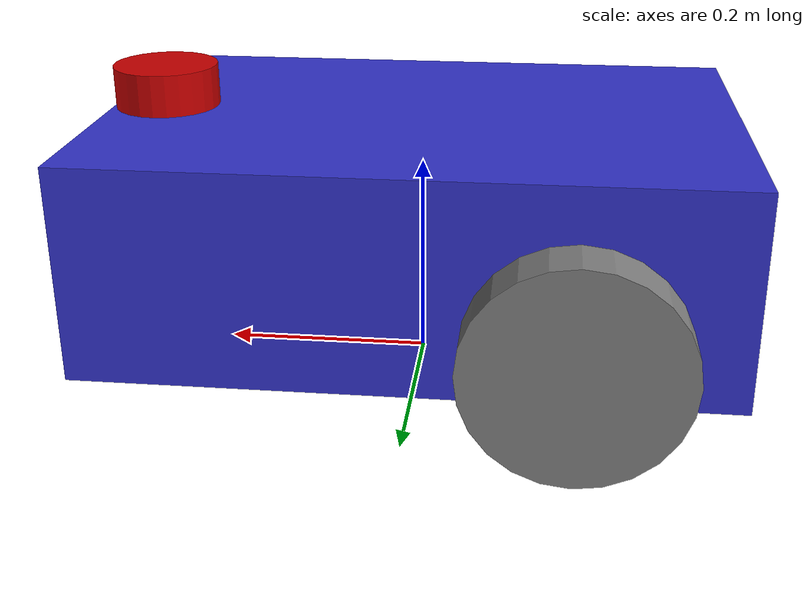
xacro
<?xml version="1.0"?>
<robot name="medibot" xmlns:xacro="http://www.ros.org/wiki/xacro">

  <!-- Define robot constants -->
  <xacro:property name="base_width" value="0.4"/>
  <xacro:property name="base_length" value="0.6"/>
  <xacro:property name="base_height" value="0.2"/>

  <xacro:property name="wheel_radius" value="0.1"/>
  <xacro:property name="wheel_width" value="0.05"/>
  <xacro:property name="wheel_ygap" value="0.025"/>
  <xacro:property name="wheel_zoff" value="0.05"/>
  <xacro:property name="wheel_xoff" value="0.15"/>

  <xacro:property name="caster_xoff" value="0.2"/>

  <!-- Define intertial property macros  -->
  <xacro:macro name="box_inertia" params="m w h d">
    <inertial>
      <origin xyz="0 0 0" rpy="${pi/2} 0 ${pi/2}"/>
      <mass value="${m}"/>
      <inertia ixx="${(m/12) * (h*h + d*d)}" ixy="0.0" ixz="0.0" iyy="${(m/12) * (w*w + d*d)}" iyz="0.0" izz="${(m/12) * (w*w + h*h)}"/>
    </inertial>
  </xacro:macro>

  <xacro:macro name="cylinder_inertia" params="m r h">
    <inertial>
      <origin xyz="0 0 0" rpy="${pi/2} 0 0" />
      <mass value="${m}"/>
      <inertia ixx="${(m/12) * (3*r*r + h*h)}" ixy = "0" ixz = "0" iyy="${(m/12) * (3*r*r + h*h)}" iyz = "0" izz="${(m/2) * (r*r)}"/>
    </inertial>
  </xacro:macro>

  <xacro:macro name="sphere_inertia" params="m r">
    <inertial>
      <mass value="${m}"/>
      <inertia ixx="${(2/5) * m * (r*r)}" ixy="0.0" ixz="0.0" iyy="${(2/5) * m * (r*r)}" iyz="0.0" izz="${(2/5) * m * (r*r)}"/>
    </inertial>
  </xacro:macro>

  <!-- Robot Footprint -->
  <link name="base_footprint"/>

  <!-- Robot Base -->
  <link name="base_link">
    <visual>
      <geometry>
        <box size="${base_length} ${base_width} ${base_height}"/>
      </geometry>
      <material name="blue">
        <color rgba="0.2 0.2 0.8 1"/>
      </material>
    </visual>

    <collision>
      <geometry>
        <box size="${base_length} ${base_width} ${base_height}"/>
      </geometry>
    </collision>

    <xacro:box_inertia m="15" w="${base_width}" d="${base_length}" h="${base_height}"/>
  </link>

  <joint name="base_joint" type="fixed">
    <parent link="base_footprint"/>
    <child link="base_link"/>
    <origin xyz="0.0 0.0 ${(wheel_radius+wheel_zoff)}" rpy="0 0 0"/>
  </joint>

  <!-- Wheels -->
  <xacro:macro name="wheel" params="prefix x_reflect y_reflect">
    <link name="${prefix}_link">
      <visual>
        <origin xyz="0 0 0" rpy="${pi/2} 0 0"/>
        <geometry>
          <cylinder radius="${wheel_radius}" length="${wheel_width}"/>
        </geometry>
        <material name="gray">
          <color rgba="0.5 0.5 0.5 1"/>
        </material>
      </visual>

      <collision>
        <origin xyz="0 0 0" rpy="${pi/2} 0 0"/>
        <geometry>
          <cylinder radius="${wheel_radius}" length="${wheel_width}"/>
        </geometry>
      </collision>

      <xacro:cylinder_inertia m="1" r="${wheel_radius}" h="${wheel_width}"/>
    </link>

    <joint name="${prefix}_joint" type="continuous">
      <parent link="base_link"/>
      <child link="${prefix}_link"/>
      <origin xyz="${x_reflect*wheel_xoff} ${y_reflect*(base_width/2+wheel_ygap)} ${-wheel_zoff}" rpy="0 0 0"/>
      <axis xyz="0 1 0"/>
    </joint>
  </xacro:macro>

  <xacro:wheel prefix="left_wheel" x_reflect="-1" y_reflect="1" />
  <xacro:wheel prefix="right_wheel" x_reflect="-1" y_reflect="-1" />

  <!-- Caster Wheel -->
  <link name="front_caster">
    <visual>
      <geometry>
        <sphere radius="${(wheel_radius+wheel_zoff-(base_height/2))}"/>
      </geometry>
      <material name="gray">
        <color rgba="0.5 0.5 0.5 1"/>
      </material>
    </visual>

    <collision>
      <origin xyz="0 0 0" rpy="0 0 0"/>
      <geometry>
        <sphere radius="${(wheel_radius+wheel_zoff-(base_height/2))}"/>
      </geometry>
    </collision>

    <xacro:sphere_inertia m="0.5" r="${(wheel_radius+wheel_zoff-(base_height/2))}"/>
  </link>

  <joint name="caster_joint" type="fixed">
    <parent link="base_link"/>
    <child link="front_caster"/>
    <origin xyz="${caster_xoff} 0.0 ${-(base_height/2)}" rpy="0 0 0"/>
  </joint>

  <!-- Laser Scanner -->
  <link name="laser_frame">
    <visual>
      <origin xyz="0 0 0" rpy="0 0 0"/>
      <geometry>
        <cylinder radius="0.05" length="0.04"/>
      </geometry>
      <material name="red">
        <color rgba="0.8 0.0 0.0 1"/>
      </material>
    </visual>

    <collision>
      <origin xyz="0 0 0" rpy="0 0 0"/>
      <geometry>
        <cylinder radius="0.05" length="0.04"/>
      </geometry>
    </collision>

    <xacro:cylinder_inertia m="0.1" r="0.05" h="0.04"/>
  </link>

  <joint name="laser_joint" type="fixed">
    <parent link="base_link"/>
    <child link="laser_frame"/>
    <origin xyz="${base_length/2 - 0.05} 0 ${base_height/2 + 0.02}" rpy="0 0 0"/>
  </joint>

  <!-- Gazebo plugins -->
  <gazebo>
    <plugin name="diff_drive" filename="libgazebo_ros_diff_drive.so">

      <!-- Update rate in Hz -->
      <update_rate>50</update_rate>

      <!-- wheels -->
      <left_joint>left_wheel_joint</left_joint>
      <right_joint>right_wheel_joint</right_joint>

      <!-- kinematics -->
      <wheel_separation>${base_width + 2*wheel_ygap}</wheel_separation>
      <wheel_diameter>${2*wheel_radius}</wheel_diameter>

      <!-- limits -->
      <max_wheel_torque>20</max_wheel_torque>
      <max_wheel_acceleration>1.0</max_wheel_acceleration>

      <!-- output -->
      <publish_odom>true</publish_odom>
      <publish_odom_tf>true</publish_odom_tf>
      <publish_wheel_tf>true</publish_wheel_tf>

      <odometry_frame>odom</odometry_frame>
      <robot_base_frame>base_footprint</robot_base_frame>

      <!-- Topic to receive geometry_msgs/Twist message commands -->
      <command_topic>cmd_vel</command_topic>

      <!-- Topic to publish nav_msgs/Odometry messages -->
      <odometry_topic>odom</odometry_topic>

    </plugin>
  </gazebo>

  <!-- Laser scanner gazebo plugin -->
  <gazebo reference="laser_frame">
    <sensor name="laser" type="ray">
      <pose>0 0 0 0 0 0</pose>
      <visualize>true</visualize>
      <update_rate>10</update_rate>
      <ray>
        <scan>
          <horizontal>
            <samples>360</samples>
            <resolution>1</resolution>
            <min_angle>-3.14159</min_angle>
            <max_angle>3.14159</max_angle>
          </horizontal>
        </scan>
        <range>
          <min>0.1</min>
          <max>12.0</max>
          <resolution>0.01</resolution>
        </range>
        <noise>
          <type>gaussian</type>
          <mean>0.0</mean>
          <stddev>0.01</stddev>
        </noise>
      </ray>
      <plugin name="scan" filename="libgazebo_ros_ray_sensor.so">
        <ros>
          <remapping>~/out:=scan</remapping>
        </ros>
        <output_type>sensor_msgs/LaserScan</output_type>
        <frame_name>laser_frame</frame_name>
      </plugin>
    </sensor>
  </gazebo>

  <!-- Gazebo material properties -->
  <gazebo reference="base_link">
    <material>Gazebo/Blue</material>
  </gazebo>

  <gazebo reference="left_wheel_link">
    <material>Gazebo/Gray</material>
    <mu1>1.0</mu1>
    <mu2>1.0</mu2>
  </gazebo>

  <gazebo reference="right_wheel_link">
    <material>Gazebo/Gray</material>
    <mu1>1.0</mu1>
    <mu2>1.0</mu2>
  </gazebo>

  <gazebo reference="front_caster">
    <material>Gazebo/Gray</material>
    <mu1>0.0</mu1>
    <mu2>0.0</mu2>
  </gazebo>

  <gazebo reference="laser_frame">
    <material>Gazebo/Red</material>
  </gazebo>

</robot>
